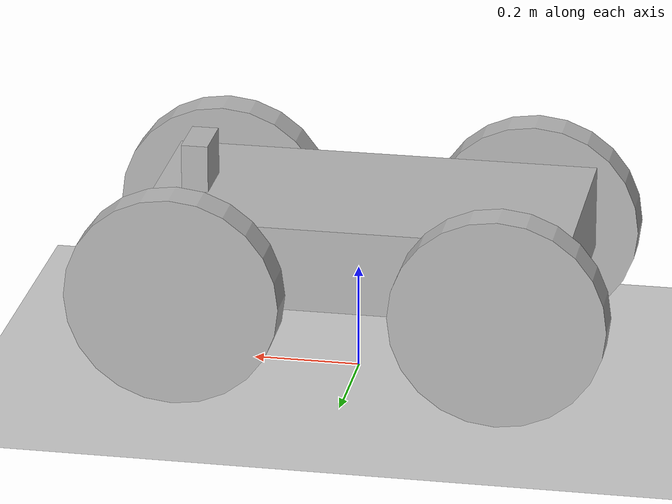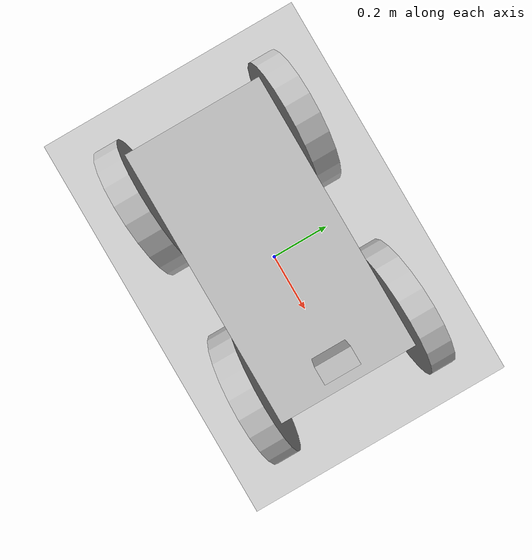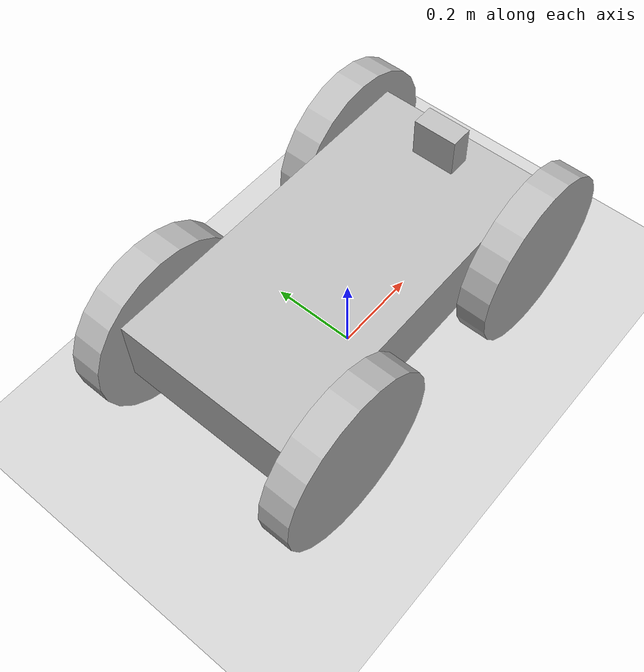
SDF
<?xml version="1.0" ?>
<sdf version="1.5">
    <world name="default">
        <scene>
        </scene>

        <physics type="ode">
            <real_time_update_rate>0</real_time_update_rate>
        </physics>

        <include>
            <uri>model://sun</uri>
        </include>

        <include>
            <uri>model://ground_plane</uri>
        </include>

        <model name="rl_rover">
            <include>
                <uri>model://rover</uri>
            </include>
            <plugin name="RoverPlugin" filename="libNFQPlugin.so">
                <mode>test</mode>
                <max_steps>30000</max_steps>
                <weights_file>./caffe/models/nfq_gazebo_iter_50000.caffemodel</weights_file>

                <chassis_name>rover::chassis</chassis_name>
                <front_left_joint>rover::front_left_joint</front_left_joint>
                <front_right_joint>rover::front_right_joint</front_right_joint>
                <rear_left_joint>rover::rear_left_joint</rear_left_joint>
                <rear_right_joint>rover::rear_right_joint</rear_right_joint>
            </plugin>
        </model>

    </world>
</sdf>

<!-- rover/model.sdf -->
<sdf version="1.4">
    <model name="rover">
        <static>false</static>
        <pose>0 0 .12 0 0 0</pose>

        <link name="camera_link">
            <pose>0.3 0 0.27 0 0 0</pose>
            <inertial>
                <mass>0.15</mass>
            </inertial>
            <collision name="camera_collision">
                <geometry>
                    <box>
                        <size>0.05 0.1 0.1</size>
                    </box>
                </geometry>
            </collision>
            <visual name="camera_visual">
                <geometry>
                    <box>
                        <size>0.05 0.1 0.1</size>
                    </box>
                </geometry>
            </visual>
            <sensor name="camera_sensor" type="camera">
                <camera>
                    <horizontal_fov>1.045</horizontal_fov>
                    <image>
                        <width>320</width>
                        <height>240</height>
                        <format>B8G8R8</format>
                    </image>
                    <clip>
                        <near>0.1</near>
                        <far>100</far>
                    </clip>
                </camera>
                <always_on>1</always_on>
                <update_rate>25</update_rate>
                <visualize>true</visualize>
            </sensor>
        </link>

        <joint name="camera_joint" type="revolute">
            <parent>chassis</parent>
            <child>camera_link</child>
            <axis>
                <xyz>0 0 1</xyz>
                <limit>
                    <upper>0</upper>
                    <lower>0</lower>
                </limit>
            </axis>
        </joint>

        <link name="chassis">
            <pose>-0.02 0 0.15 0 0 0</pose>
            <inertial>
                <mass>10</mass>
            </inertial>
            <collision name="chassis_collision">
                <geometry>
                    <box>
                        <size>.8 .4 .16</size>
                    </box>
                </geometry>
            </collision>
            <visual name="chassis_visual">
                <geometry>
                    <box>
                        <size>.8 .4 .16</size>
                    </box>
                </geometry>
            </visual>
            <sensor name="contact_sensor_chassis" type="contact">
                <contact>
                    <collision>chassis_collision</collision>
                </contact>
            </sensor>
        </link>

        <link name="rear_left_wheel">
            <pose>-0.3 0.24 0.1 0 1.5707 1.5707</pose>
            <inertial>
                <mass>1.5</mass>
            </inertial>
            <collision name="rear_left_wheel_collision">
                <geometry>
                    <cylinder>
                        <radius>.2</radius>
                        <length>.07</length>
                    </cylinder>
                </geometry>
                <surface>
                    <friction>
                        <ode>
                            <mu>100</mu>
                            <mu2>50</mu2>
                        </ode>
                    </friction>
                </surface>
            </collision>
            <visual name="rear_left_wheel_visual">
                <geometry>
                    <cylinder>
                        <radius>.2</radius>
                        <length>.07</length>
                    </cylinder>
                </geometry>
            </visual>
            <sensor name="contact_sensor_rlw" type="contact">
                <contact>
                    <collision>rear_left_wheel_collision</collision>
                </contact>
            </sensor>
        </link>

        <joint type="revolute" name="rear_left_joint">
            <child>rear_left_wheel</child>
            <parent>chassis</parent>
            <axis>
                <xyz>0 1 0</xyz>
            </axis>
        </joint>

        <link name="rear_right_wheel">
            <pose>-0.3 -0.24 0.1 0 1.5707 1.5707</pose>
            <inertial>
                <mass>1.5</mass>
            </inertial>
            <collision name="rear_right_wheel_collision">
                <geometry>
                    <cylinder>
                        <radius>.2</radius>
                        <length>.07</length>
                    </cylinder>
                </geometry>
                <surface>
                    <friction>
                        <ode>
                            <mu>100</mu>
                            <mu2>50</mu2>
                        </ode>
                    </friction>
                </surface>
            </collision>
            <visual name="rear_right_wheel_visual">
                <geometry>
                    <cylinder>
                        <radius>.2</radius>
                        <length>.07</length>
                    </cylinder>
                </geometry>
            </visual>
            <sensor name="contact_sensor_rrw" type="contact">
                <contact>
                    <collision>rear_right_wheel_collision</collision>
                </contact>
            </sensor>
        </link>

        <joint type="revolute" name="rear_right_joint">
            <child>rear_right_wheel</child>
            <parent>chassis</parent>
            <axis>
                <xyz>0 1 0</xyz>
            </axis>
        </joint>

        <link name="front_left_wheel">
            <pose>0.3 0.24 0.1 0 1.5707 1.5707</pose>
            <inertial>
                <mass>1.5</mass>
            </inertial>
            <collision name="front_left_wheel_collision">
                <geometry>
                    <cylinder>
                        <radius>.2</radius>
                        <length>.07</length>
                    </cylinder>
                </geometry>
                <surface>
                    <friction>
                        <ode>
                            <mu>100</mu>
                            <mu2>50</mu2>
                        </ode>
                    </friction>
                </surface>
            </collision>
            <visual name="front_left_wheel_visual">
                <geometry>
                    <cylinder>
                        <radius>.2</radius>
                        <length>.07</length>
                    </cylinder>
                </geometry>
            </visual>
            <sensor name="contact_sensor_flw" type="contact">
                <contact>
                    <collision>front_left_wheel_collision</collision>
                </contact>
            </sensor>
        </link>

        <link name="front_left_connector">
            <pose>0.3 0.25 0.1 0 1.5707 1.5707</pose>
        </link>

        <joint type="revolute" name="front_left_joint">
            <parent>chassis</parent>
            <child>front_left_connector</child>
            <axis>
                <xyz>0 0 1</xyz>
            </axis>
        </joint>

        <joint type="revolute" name="front_left_joint2">
            <parent>front_left_connector</parent>
            <child>front_left_wheel</child>
            <axis>
                <xyz>0 1 0</xyz>
            </axis>
        </joint>

        <link name="front_right_wheel">
            <pose>0.3 -0.24 0.1 0 1.5707 1.5707</pose>
            <inertial>
                <mass>1.5</mass>
            </inertial>
            <collision name="front_right_wheel_collision">
                <geometry>
                    <cylinder>
                        <radius>.2</radius>
                        <length>.07</length>
                    </cylinder>
                </geometry>
                <surface>
                    <friction>
                        <ode>
                            <mu>100</mu>
                            <mu2>50</mu2>
                        </ode>
                    </friction>
                </surface>
            </collision>
            <visual name="front_right_wheel_visual">
                <geometry>
                    <cylinder>
                        <radius>.2</radius>
                        <length>.07</length>
                    </cylinder>
                </geometry>
            </visual>
            <sensor name="contact_sensor_frw" type="contact">
                <contact>
                    <collision>front_right_wheel_collision</collision>
                </contact>
            </sensor>
        </link>

        <link name="front_right_connector">
            <pose>0.3 -0.25 0.1 0 1.5707 1.5707</pose>
        </link>

        <joint type="revolute" name="front_right_joint">
            <parent>chassis</parent>
            <child>front_right_connector</child>
            <axis>
                <xyz>0 0 1</xyz>
                <limit>
                    <lower>-0.61</lower>
                    <upper>0.61</upper>
                </limit>
            </axis>
        </joint>

        <joint type="revolute" name="front_right_joint2">
            <parent>front_right_connector</parent>
            <child>front_right_wheel</child>
            <axis>
                <xyz>0 1 0</xyz>
            </axis>
        </joint>

    </model>
</sdf>
